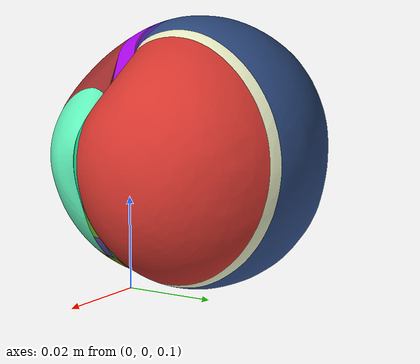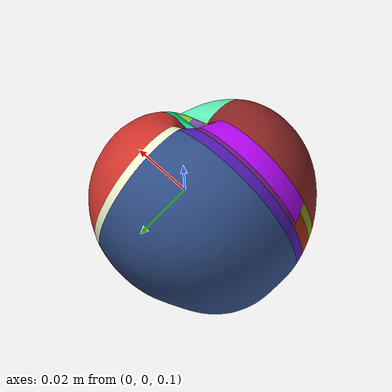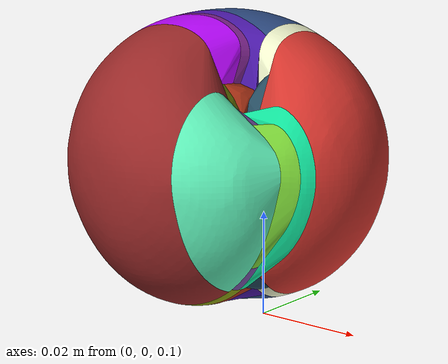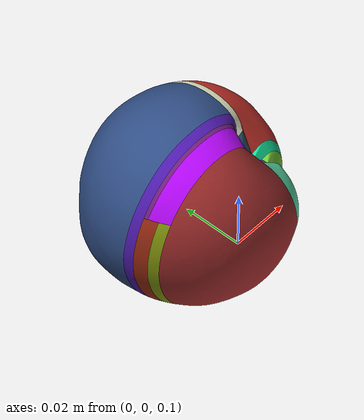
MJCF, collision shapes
<mujoco model="015_peach">
  <compiler assetdir="meshes" texturedir="materials"/>

  <asset>
    <texture type="2d" name="texture" file="015_peach_texture_map.png"/>
    <material name="texture" texture="texture"/>

    <mesh file="015_peach_textured.obj"/>
    <mesh file="015_peach_coacd_part_000.obj"/>
    <mesh file="015_peach_coacd_part_001.obj"/>
    <mesh file="015_peach_coacd_part_002.obj"/>
    <mesh file="015_peach_coacd_part_003.obj"/>
    <mesh file="015_peach_coacd_part_004.obj"/>
    <mesh file="015_peach_coacd_part_005.obj"/>
    <mesh file="015_peach_coacd_part_006.obj"/>
    <mesh file="015_peach_coacd_part_007.obj"/>
    <mesh file="015_peach_coacd_part_008.obj"/>
    <mesh file="015_peach_coacd_part_009.obj"/>
    <mesh file="015_peach_coacd_part_010.obj"/>
    <mesh file="015_peach_coacd_part_011.obj"/>
    <mesh file="015_peach_coacd_part_012.obj"/>
    <mesh file="015_peach_coacd_part_013.obj"/>
  </asset>

  <default>
    <default class="015_peach">
      <default class="visual_015_peach">
        <geom type="mesh" group="2" density="200" contype="0" conaffinity="0" material="texture"/>
      </default>
      <default class="collision_015_peach">
        <geom type="mesh" group="3" mass="0" density="0" solref=".004 1" friction="1.0 0.01 0.01" condim="6"/>
      </default>
    </default>
  </default>

  <worldbody>
    <body childclass="015_peach" pos="0 0 0.1">
      <freejoint/>
      <geom class="visual_015_peach" mesh="015_peach_textured"/>
      <geom class="collision_015_peach" mesh="015_peach_coacd_part_000" rgba="0.375 0.95 0.73 1"/>
      <geom class="collision_015_peach" mesh="015_peach_coacd_part_001" rgba="0.599 0.16 0.16 1"/>
      <geom class="collision_015_peach" mesh="015_peach_coacd_part_002" rgba="0.058 0.87 0.60 1"/>
      <geom class="collision_015_peach" mesh="015_peach_coacd_part_003" rgba="0.708 0.02 0.97 1"/>
      <geom class="collision_015_peach" mesh="015_peach_coacd_part_004" rgba="0.832 0.21 0.18 1"/>
      <geom class="collision_015_peach" mesh="015_peach_coacd_part_005" rgba="0.183 0.30 0.52 1"/>
      <geom class="collision_015_peach" mesh="015_peach_coacd_part_006" rgba="0.432 0.29 0.61 1"/>
      <geom class="collision_015_peach" mesh="015_peach_coacd_part_007" rgba="0.139 0.29 0.37 1"/>
      <geom class="collision_015_peach" mesh="015_peach_coacd_part_008" rgba="0.456 0.79 0.20 1"/>
      <geom class="collision_015_peach" mesh="015_peach_coacd_part_009" rgba="0.514 0.59 0.05 1"/>
      <geom class="collision_015_peach" mesh="015_peach_coacd_part_010" rgba="0.608 0.17 0.07 1"/>
      <geom class="collision_015_peach" mesh="015_peach_coacd_part_011" rgba="0.949 0.97 0.81 1"/>
      <geom class="collision_015_peach" mesh="015_peach_coacd_part_012" rgba="0.305 0.10 0.68 1"/>
      <geom class="collision_015_peach" mesh="015_peach_coacd_part_013" rgba="0.440 0.12 0.50 1"/>
    </body>
  </worldbody>
</mujoco>
